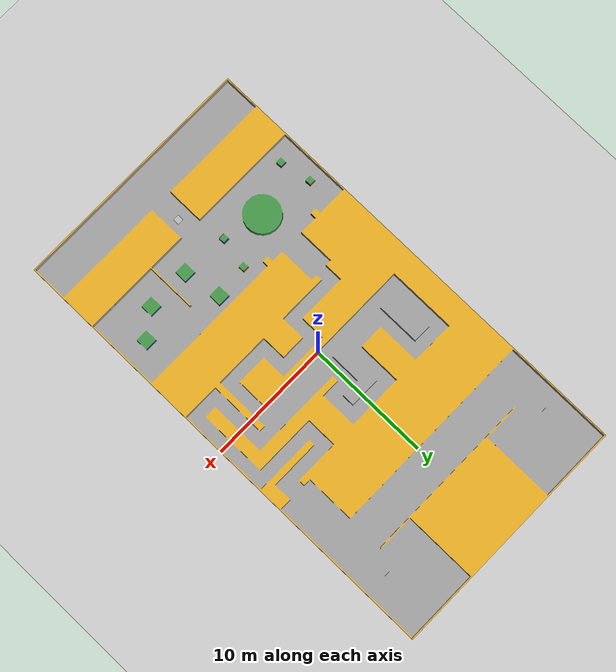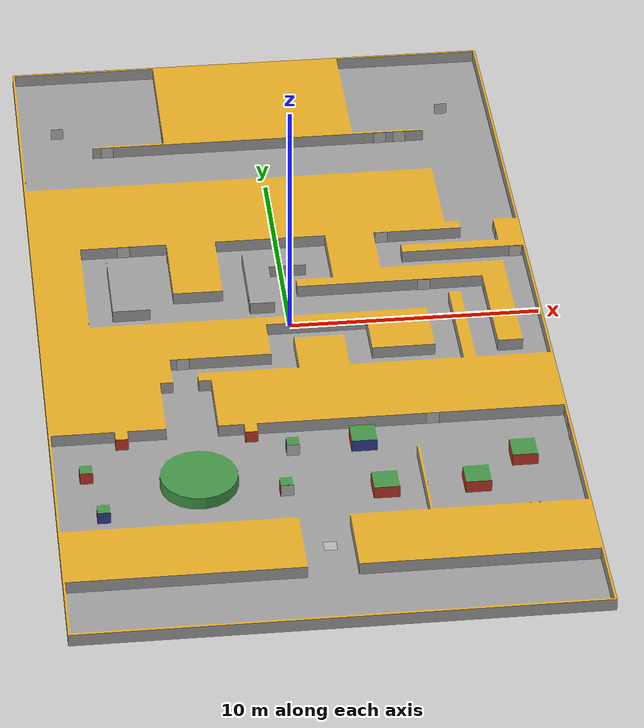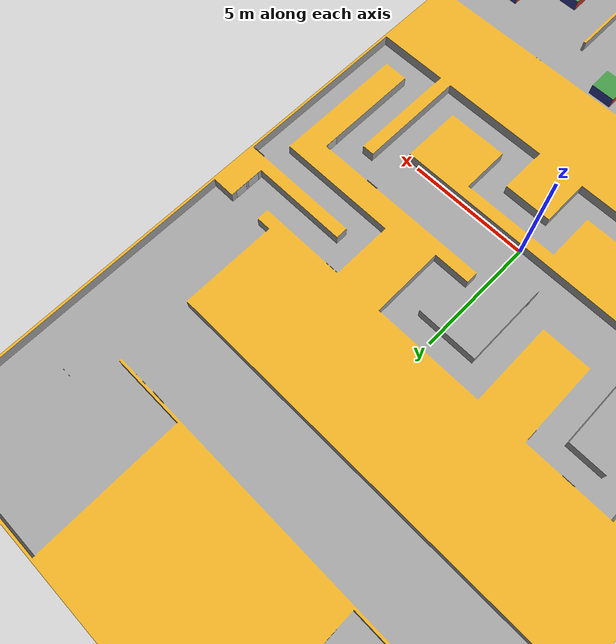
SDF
<?xml version="1.0"?>
<sdf version="1.9">
  <world name="final_arena">

    <physics name="1ms" type="ode">
      <max_step_size>0.001</max_step_size>
      <real_time_factor>1</real_time_factor>
      <real_time_update_rate>1000</real_time_update_rate>
    </physics>

    <plugin name="ignition::gazebo::systems::Physics" filename="ignition-gazebo-physics-system"/>
    <plugin name="ignition::gazebo::systems::UserCommands" filename="ignition-gazebo-user-commands-system"/>
    <plugin name="ignition::gazebo::systems::SceneBroadcaster" filename="ignition-gazebo-scene-broadcaster-system"/>

    <plugin name="ignition::gazebo::systems::Sensors" filename="ignition-gazebo-sensors-system">
      <render_engine>ogre2</render_engine>
    </plugin>
    <plugin name="ignition::gazebo::systems::Imu" filename="ignition-gazebo-imu-system"/>

    <gravity>0 0 -9.8</gravity>
    <magnetic_field>6e-06 2.3e-05 -4.2e-05</magnetic_field>
    <scene>
      <ambient>0.06 0.08 0.12 1</ambient>
      <background>0.02 0.03 0.05 1</background>
      <shadows>true</shadows>
      <sky>
        <enable>false</enable>
      </sky>
    </scene>

    <include>
      <uri>model://arena</uri>
      <name>arena</name>
      <pose>0 0 6.25 0 0 0</pose>
    </include>

    <include>
      <uri>model://ground_plane</uri>
      <name>ground_plane</name>
      <pose>0 0 0 0 0 0</pose>
    </include>

    <include>
      <uri>model://aruco_0</uri>
      <name>aruco_0</name>
      <pose>-4.490480 -2.519260 0.237892 1.57 0 -1.570000</pose>
    </include>

    <include>
      <uri>model://aruco_1</uri>
      <name>aruco_1</name>
      <pose>8.997920 4.904980 0.237892 0 0 3.141590</pose>
    </include>

    <include>
      <uri>model://aruco_2</uri>
      <name>aruco_2</name>
      <pose>9.928880 -8.459880 0.238104 0 0 3.141590</pose>
    </include>

    <include>
      <uri>model://aruco_3</uri>
      <name>aruco_3</name>
      <pose>-6.252990 5.472760 0.237892 0 0 -1.570000</pose>
    </include>

    <include>
      <uri>model://aruco_4</uri>
      <name>aruco_4</name>
      <pose>-6.389760 12.937400 0.238257 0 0 -1.570000</pose>
    </include>

    <include>
      <uri>model://aruco_5</uri>
      <name>aruco_5</name>
      <pose>5.982410 12.934400 0.237892 0 0 -1.570000</pose>
    </include>

    <include>
      <uri>model://direction_sign</uri>
      <name>arrow_1</name>
      <pose>0.034026 -14.237400 0.002942 -3.141540 -1.570000 1.570000</pose>
    </include>

    <include>
      <uri>model://direction_sign</uri>
      <name>arrow_2</name>
      <pose>-0.753714 -8.516400 0.240723 -1.570000 0.000000 -1.570000</pose>
    </include>

    <include>
      <uri>model://direction_sign</uri>
      <name>arrow_3</name>
      <pose>-1.242350 -11.019200 0.238732 0 0 -1.570010</pose>
    </include>

    <include>
      <uri>model://direction_sign</uri>
      <name>arrow_4</name>
      <pose>-7.995950 0.345828 0.239162 -1.570000 0 0</pose>
    </include>

    <include>
      <uri>model://direction_sign</uri>
      <name>arrow_5</name>
      <pose>-4.511390 5.063790 0.240723 -1.570000 0 -3.141590</pose>
    </include>

    <include>
      <uri>model://direction_sign</uri>
      <name>arrow_6</name>
      <pose>-1.508650 1.317100 0.238732 0 0 3.141590</pose>
    </include>

    <include>
      <uri>model://direction_sign</uri>
      <name>arrow_7</name>
      <pose>-1.510670 1.241200 0.238732 0 0 3.141590</pose>
    </include>

    <include>
      <uri>model://direction_sign</uri>
      <name>arrow_8</name>
      <pose>7.996550 1.673730 0.240723 -1.570000 0 -3.141590</pose>
    </include>

    <include>
      <uri>model://direction_sign</uri>
      <name>arrow_9</name>
      <pose>4.317710 5.478720 0.240723 -1.570000 0 -1.570000</pose>
    </include>

    <include>
      <uri>model://direction_sign</uri>
      <name>arrow_10</name>
      <pose>8.993990 5.514780 0.240723 1.57000 0 -3.141590</pose>
    </include>

    <include>
      <uri>model://direction_sign</uri>
      <name>arrow_11</name>
      <pose>5.154020 12.917500 0.240723 1.57000 0 -1.570000</pose>
    </include>

    <include>
      <uri>model://direction_sign</uri>
      <name>arrow_12</name>
      <pose>-9.943610 10.583900 0.239162 -1.57000 0 0</pose>
    </include>

    <include>
      <uri>model://direction_sign</uri>
      <name>arrow_13</name>
      <pose>-8.410080 14.576000 0.240723 -1.570000 0 -1.570000</pose>
    </include>

    <include>
      <uri>model://direction_sign</uri>
      <name>arrow_14</name>
      <pose>9.942630 -7.557570 0.240723 -1.570000 0 -3.141590</pose>
    </include>

    <include>
      <uri>model://direction_sign</uri>
      <name>arrow_15</name>
      <pose>-3.013570 -9.977950 0.239162 -1.570000 0 0.000000</pose>
    </include>

    <include>
      <uri>model://direction_sign</uri>
      <name>arrow_16</name>
      <pose>7.988170 -13.006300 0.241017 -1.570000 0 1.570000</pose>
    </include>

    <include>
      <uri>model://direction_sign</uri>
      <name>arrow_17</name>
      <pose>4.052360 -11.572100 0.239162 -1.570000 0 0.000000</pose>
    </include>

    <include>
      <uri>model://direction_sign</uri>
      <name>arrow_18</name>
      <pose>4.816020 -7.013220 0.240723 1.570000 0 -1.570000</pose>
    </include>

    <include>
      <uri>model://direction_sign</uri>
      <name>arrow_19</name>
      <pose>4.816020 -7.013220 0.240723 1.570000 0 -1.570000</pose>
    </include>

    <include>
      <uri>model://direction_sign</uri>
      <name>arrow_20</name>
      <pose>5.630170 1.956310 0.240723 1.570000 0 -1.570000</pose>
    </include>

    <include>
      <uri>model://direction_sign</uri>
      <name>arrow_21</name>
      <pose>9.637170 3.958830 0.240723 1.570000 0 -1.570000</pose>
    </include>

    <include>
      <uri>model://stop_sign</uri>
      <name>stop_sign</name>
      <pose>-4.007440 14.021700 0.237892 0 0 3.141590</pose>
    </include>

    <include>
      <uri>model://stop_sign</uri>
      <name>false_goal</name>
      <pose>7.945990 14.554900 0.469528 0 0 -1.570000</pose>
    </include>

    <light name="sun" type="directional">
      <pose>100 10 10 0 0 0</pose>
      <cast_shadows>true</cast_shadows>
      <intensity>1</intensity>
      <direction>-0.5 0.1 -0.9</direction>
      <diffuse>1 1 1 1</diffuse>
      <specular>0.5 0.5 0.5 1</specular>
      <attenuation>
        <range>1000</range>
        <linear>0.01</linear>
        <constant>0.9</constant>
        <quadratic>0.001</quadratic>
      </attenuation>
    </light>
  </world>
</sdf>

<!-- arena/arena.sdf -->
<sdf version="1.7">
  <model name="arena">
    <static>true</static>
    <link name="arena_link">
      <pose>0 0 0 0 0 0</pose>

      <visual name="arena_visual">
        <geometry>
          <mesh>
            <uri>model://arena/arena.dae</uri>
            <scale>1 1 1</scale>
          </mesh>
        </geometry>
      </visual>

      <collision name="arena_collision">
        <geometry>
          <mesh>
            <uri>model://arena/arena.dae</uri>
            <scale>1 1 1</scale>
          </mesh>
        </geometry>
      </collision>
    </link>
  </model>
</sdf>

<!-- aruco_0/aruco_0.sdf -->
<sdf version="1.7">
  <model name="aruco_0">
    <static>true</static>

    <link name="aruco_link">
      <visual name="aruco_visual">
        <geometry>
          <mesh>
            <uri>aruco_0.dae</uri>
            <scale>1 1 1</scale>
          </mesh>
        </geometry>
      </visual>

      <collision name="aruco_collision">
        <geometry>
          <mesh>
            <uri>aruco_0.dae</uri>
            <scale>1 1 1</scale>
          </mesh>
        </geometry>
      </collision>
    </link>
  </model>
</sdf>

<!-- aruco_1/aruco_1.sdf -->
<sdf version="1.7">
  <model name="aruco_1">
    <static>true</static>

    <link name="aruco_link">
      <visual name="aruco_visual">
        <geometry>
          <mesh>
            <uri>aruco_1.dae</uri>
            <scale>1 1 1</scale>
          </mesh>
        </geometry>
      </visual>

      <collision name="aruco_collision">
        <geometry>
          <mesh>
            <uri>aruco_1.dae</uri>
            <scale>1 1 1</scale>
          </mesh>
        </geometry>
      </collision>
    </link>
  </model>
</sdf>

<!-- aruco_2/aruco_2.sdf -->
<sdf version="1.7">
  <model name="aruco_2">
    <static>true</static>

    <link name="aruco_link">
      <visual name="aruco_visual">
        <geometry>
          <mesh>
            <uri>aruco_2.dae</uri>
            <scale>1 1 1</scale>
          </mesh>
        </geometry>
      </visual>

      <collision name="aruco_collision">
        <geometry>
          <mesh>
            <uri>aruco_2.dae</uri>
            <scale>1 1 1</scale>
          </mesh>
        </geometry>
      </collision>
    </link>
  </model>
</sdf>

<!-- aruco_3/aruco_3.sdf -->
<sdf version="1.7">
  <model name="aruco_3">
    <static>true</static>

    <link name="aruco_link">
      <visual name="aruco_visual">
        <geometry>
          <mesh>
            <uri>aruco_3.dae</uri>
            <scale>1 1 1</scale>
          </mesh>
        </geometry>
      </visual>

      <collision name="aruco_collision">
        <geometry>
          <mesh>
            <uri>aruco_3.dae</uri>
            <scale>1 1 1</scale>
          </mesh>
        </geometry>
      </collision>
    </link>
  </model>
</sdf>

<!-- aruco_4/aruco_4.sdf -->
<sdf version="1.7">
  <model name="aruco_4">
    <static>true</static>

    <link name="aruco_link">
      <visual name="aruco_visual">
        <geometry>
          <mesh>
            <uri>aruco_4.dae</uri>
            <scale>1 1 1</scale>
          </mesh>
        </geometry>
      </visual>

      <collision name="aruco_collision">
        <geometry>
          <mesh>
            <uri>aruco_4.dae</uri>
            <scale>1 1 1</scale>
          </mesh>
        </geometry>
      </collision>
    </link>
  </model>
</sdf>

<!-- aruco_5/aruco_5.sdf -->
<sdf version="1.7">
  <model name="aruco_5">
    <static>true</static>

    <link name="aruco_link">
      <visual name="aruco_visual">
        <geometry>
          <mesh>
            <uri>aruco_5.dae</uri>
            <scale>1 1 1</scale>
          </mesh>
        </geometry>
      </visual>

      <collision name="aruco_collision">
        <geometry>
          <mesh>
            <uri>aruco_5.dae</uri>
            <scale>1 1 1</scale>
          </mesh>
        </geometry>
      </collision>
    </link>
  </model>
</sdf>

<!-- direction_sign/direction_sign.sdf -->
<sdf version="1.7">
  <model name="direction_sign">
    <static>true</static>

    <link name="sign_link">
      <visual name="sign_visual">
        <geometry>
          <mesh>
            <uri>direction_sign.dae</uri>
            <scale>1 1 1</scale>
          </mesh>
        </geometry>
      </visual>

      <collision name="sign_collision">
        <geometry>
          <mesh>
            <uri>direction_sign.dae</uri>
            <scale>1 1 1</scale>
          </mesh>
        </geometry>
      </collision>
    </link>
  </model>
</sdf>

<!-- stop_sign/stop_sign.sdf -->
<sdf version="1.7">
  <model name="aruco_1">
    <static>true</static>

    <link name="aruco_link">
      <visual name="aruco_visual">
        <geometry>
          <mesh>
            <uri>stop_sign.dae</uri>
            <scale>1 1 1</scale>
          </mesh>
        </geometry>
      </visual>

      <collision name="aruco_collision">
        <geometry>
          <mesh>
            <uri>stop_sign.dae</uri>
            <scale>1 1 1</scale>
          </mesh>
        </geometry>
      </collision>
    </link>
  </model>
</sdf>
